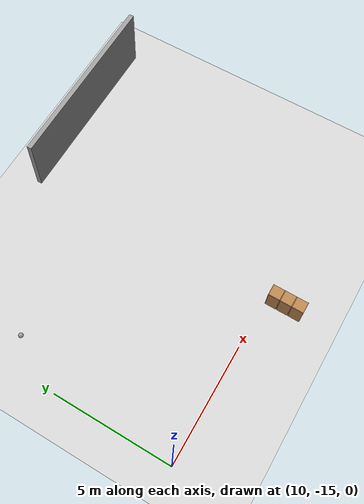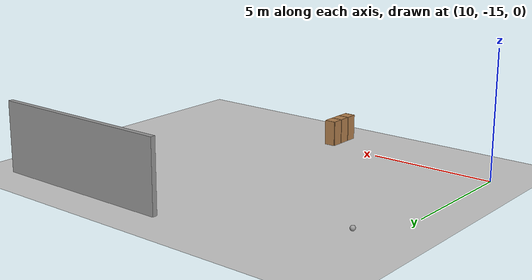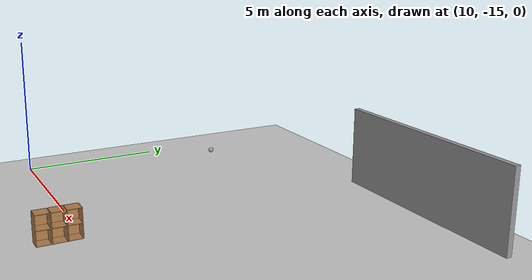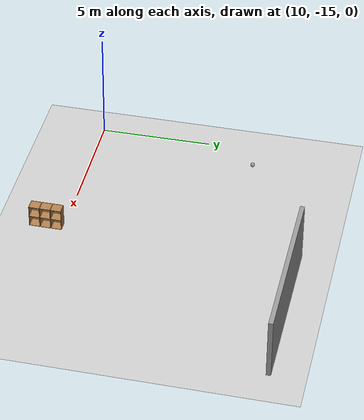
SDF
<sdf version="1.6">
 <world name="default">
  <model name="ground_plane">
   <static>1</static>
   <link name="link">
    <collision name="collision">
     <geometry><plane><normal>0 0 1</normal><size>100 100</size></plane></geometry>
     <surface>
      <contact><collide_bitmask>65535</collide_bitmask></contact>
      <friction><ode><mu>100</mu><mu2>50</mu2></ode></friction>
     </surface>
    </collision>
    <visual name="visual">
     <cast_shadows>0</cast_shadows>
     <geometry><plane><normal>0 0 1</normal><size>100 100</size></plane></geometry>
     <material>
      <script><uri>file://media/materials/scripts/gazebo.material</uri><name>Gazebo/Grey</name></script>
     </material>
    </visual>
   </link>
  </model>
  <model name="grey_wall">
   <static>1</static>
   <link name="link">
    <pose>0 0 1.4 0 -0 0</pose>
    <collision name="collision"><geometry><box><size>7.5 0.2 2.8</size></box></geometry></collision>
    <visual name="visual">
     <cast_shadows>0</cast_shadows>
     <geometry><box><size>7.5 0.2 2.8</size></box></geometry>
     <material>
      <script>
       <uri>model://grey_wall/materials/scripts</uri>
       <uri>model://grey_wall/materials/textures</uri>
       <name>vrc/grey_wall</name>
      </script>
     </material>
    </visual>
   </link>
   <pose>20.7355 -4.54706 0 0 -0 0</pose>
  </model>
  <model name="cabinet">
   <static>1</static>
   <link name="cabinet_bottom_plate">
    <inertial>
     <pose>0 0 -1 0 -0 0</pose>
     <inertia><ixx>2.05</ixx><ixy>0</ixy><ixz>0</ixz><iyy>2.05</iyy><iyz>0</iyz><izz>2.05</izz></inertia>
     <mass>25</mass>
    </inertial>
    <collision name="cabinet_bottom_plate_geom">
     <pose>0 0 0.01 0 -0 0</pose>
     <geometry><box><size>0.45 0.45 0.02</size></box></geometry>
    </collision>
    <visual name="cabinet_bottom_plate_geom_visual">
     <pose>0 0 0.01 0 -0 0</pose>
     <geometry><box><size>0.45 0.45 0.02</size></box></geometry>
     <material>
      <script><uri>file://media/materials/scripts/gazebo.material</uri><name>Gazebo/Wood</name></script>
     </material>
    </visual>
    <collision name="cabinet_bottom_plate_geom_cabinet_back_plate">
     <pose>0.235 0 0.51 0 -0 0</pose>
     <geometry><box><size>0.02 0.45 1.02</size></box></geometry>
    </collision>
    <visual name="cabinet_bottom_plate_geom_cabinet_back_plate_visual">
     <pose>0.235 0 0.51 0 -0 0</pose>
     <geometry><box><size>0.02 0.45 1.02</size></box></geometry>
     <material>
      <script><uri>file://media/materials/scripts/gazebo.material</uri><name>Gazebo/Wood</name></script>
     </material>
    </visual>
    <collision name="cabinet_bottom_plate_geom_cabinet_left_plate">
     <pose>0 0.235 0.51 0 -0 0</pose>
     <geometry><box><size>0.45 0.02 1.02</size></box></geometry>
    </collision>
    <visual name="cabinet_bottom_plate_geom_cabinet_left_plate_visual">
     <pose>0 0.235 0.51 0 -0 0</pose>
     <geometry><box><size>0.45 0.02 1.02</size></box></geometry>
     <material>
      <script><uri>file://media/materials/scripts/gazebo.material</uri><name>Gazebo/Wood</name></script>
     </material>
    </visual>
    <collision name="cabinet_bottom_plate_geom_cabinet_middle_plate">
     <pose>0 0 0.51 0 -0 0</pose>
     <geometry><box><size>0.45 0.45 0.02</size></box></geometry>
    </collision>
    <visual name="cabinet_bottom_plate_geom_cabinet_middle_plate_visual">
     <pose>0 0 0.51 0 -0 0</pose>
     <geometry><box><size>0.45 0.45 0.02</size></box></geometry>
     <material>
      <script><uri>file://media/materials/scripts/gazebo.material</uri><name>Gazebo/Wood</name></script>
     </material>
    </visual>
    <collision name="cabinet_bottom_plate_geom_cabinet_right_plate">
     <pose>0 -0.235 0.51 0 -0 0</pose>
     <geometry><box><size>0.45 0.02 1.02</size></box></geometry>
    </collision>
    <visual name="cabinet_bottom_plate_geom_cabinet_right_plate_visual">
     <pose>0 -0.235 0.51 0 -0 0</pose>
     <geometry><box><size>0.45 0.02 1.02</size></box></geometry>
     <material>
      <script><uri>file://media/materials/scripts/gazebo.material</uri><name>Gazebo/Wood</name></script>
     </material>
    </visual>
    <collision name="cabinet_bottom_plate_geom_cabinet_top_plate">
     <pose>0 0 1.01 0 -0 0</pose>
     <geometry><box><size>0.45 0.45 0.02</size></box></geometry>
    </collision>
    <visual name="cabinet_bottom_plate_geom_cabinet_top_plate_visual">
     <pose>0 0 1.01 0 -0 0</pose>
     <geometry><box><size>0.45 0.45 0.02</size></box></geometry>
     <material>
      <script><uri>file://media/materials/scripts/gazebo.material</uri><name>Gazebo/Wood</name></script>
     </material>
    </visual>
   </link>
   <pose>17.282 -16.2661 0 0 -0 3.13752</pose>
  </model>
  <model name="cabinet_clone">
   <static>1</static>
   <link name="cabinet_bottom_plate">
    <inertial>
     <pose>0 0 -1 0 -0 0</pose>
     <inertia><ixx>2.05</ixx><ixy>0</ixy><ixz>0</ixz><iyy>2.05</iyy><iyz>0</iyz><izz>2.05</izz></inertia>
     <mass>25</mass>
    </inertial>
    <collision name="cabinet_bottom_plate_geom">
     <pose>0 0 0.01 0 -0 0</pose>
     <geometry><box><size>0.45 0.45 0.02</size></box></geometry>
    </collision>
    <visual name="cabinet_bottom_plate_geom_visual">
     <pose>0 0 0.01 0 -0 0</pose>
     <geometry><box><size>0.45 0.45 0.02</size></box></geometry>
     <material>
      <script><uri>file://media/materials/scripts/gazebo.material</uri><name>Gazebo/Wood</name></script>
     </material>
    </visual>
    <collision name="cabinet_bottom_plate_geom_cabinet_back_plate">
     <pose>0.235 0 0.51 0 -0 0</pose>
     <geometry><box><size>0.02 0.45 1.02</size></box></geometry>
    </collision>
    <visual name="cabinet_bottom_plate_geom_cabinet_back_plate_visual">
     <pose>0.235 0 0.51 0 -0 0</pose>
     <geometry><box><size>0.02 0.45 1.02</size></box></geometry>
     <material>
      <script><uri>file://media/materials/scripts/gazebo.material</uri><name>Gazebo/Wood</name></script>
     </material>
    </visual>
    <collision name="cabinet_bottom_plate_geom_cabinet_left_plate">
     <pose>0 0.235 0.51 0 -0 0</pose>
     <geometry><box><size>0.45 0.02 1.02</size></box></geometry>
    </collision>
    <visual name="cabinet_bottom_plate_geom_cabinet_left_plate_visual">
     <pose>0 0.235 0.51 0 -0 0</pose>
     <geometry><box><size>0.45 0.02 1.02</size></box></geometry>
     <material>
      <script><uri>file://media/materials/scripts/gazebo.material</uri><name>Gazebo/Wood</name></script>
     </material>
    </visual>
    <collision name="cabinet_bottom_plate_geom_cabinet_middle_plate">
     <pose>0 0 0.51 0 -0 0</pose>
     <geometry><box><size>0.45 0.45 0.02</size></box></geometry>
    </collision>
    <visual name="cabinet_bottom_plate_geom_cabinet_middle_plate_visual">
     <pose>0 0 0.51 0 -0 0</pose>
     <geometry><box><size>0.45 0.45 0.02</size></box></geometry>
     <material>
      <script><uri>file://media/materials/scripts/gazebo.material</uri><name>Gazebo/Wood</name></script>
     </material>
    </visual>
    <collision name="cabinet_bottom_plate_geom_cabinet_right_plate">
     <pose>0 -0.235 0.51 0 -0 0</pose>
     <geometry><box><size>0.45 0.02 1.02</size></box></geometry>
    </collision>
    <visual name="cabinet_bottom_plate_geom_cabinet_right_plate_visual">
     <pose>0 -0.235 0.51 0 -0 0</pose>
     <geometry><box><size>0.45 0.02 1.02</size></box></geometry>
     <material>
      <script><uri>file://media/materials/scripts/gazebo.material</uri><name>Gazebo/Wood</name></script>
     </material>
    </visual>
    <collision name="cabinet_bottom_plate_geom_cabinet_top_plate">
     <pose>0 0 1.01 0 -0 0</pose>
     <geometry><box><size>0.45 0.45 0.02</size></box></geometry>
    </collision>
    <visual name="cabinet_bottom_plate_geom_cabinet_top_plate_visual">
     <pose>0 0 1.01 0 -0 0</pose>
     <geometry><box><size>0.45 0.45 0.02</size></box></geometry>
     <material>
      <script><uri>file://media/materials/scripts/gazebo.material</uri><name>Gazebo/Wood</name></script>
     </material>
    </visual>
   </link>
   <pose>17.282 -15.7753 0 0 -0 3.13752</pose>
  </model>
  <model name="cabinet_clone_0">
   <static>1</static>
   <link name="cabinet_bottom_plate">
    <inertial>
     <pose>0 0 -1 0 -0 0</pose>
     <inertia><ixx>2.05</ixx><ixy>0</ixy><ixz>0</ixz><iyy>2.05</iyy><iyz>0</iyz><izz>2.05</izz></inertia>
     <mass>25</mass>
    </inertial>
    <collision name="cabinet_bottom_plate_geom">
     <pose>0 0 0.01 0 -0 0</pose>
     <geometry><box><size>0.45 0.45 0.02</size></box></geometry>
    </collision>
    <visual name="cabinet_bottom_plate_geom_visual">
     <pose>0 0 0.01 0 -0 0</pose>
     <geometry><box><size>0.45 0.45 0.02</size></box></geometry>
     <material>
      <script><uri>file://media/materials/scripts/gazebo.material</uri><name>Gazebo/Wood</name></script>
     </material>
    </visual>
    <collision name="cabinet_bottom_plate_geom_cabinet_back_plate">
     <pose>0.235 0 0.51 0 -0 0</pose>
     <geometry><box><size>0.02 0.45 1.02</size></box></geometry>
    </collision>
    <visual name="cabinet_bottom_plate_geom_cabinet_back_plate_visual">
     <pose>0.235 0 0.51 0 -0 0</pose>
     <geometry><box><size>0.02 0.45 1.02</size></box></geometry>
     <material>
      <script><uri>file://media/materials/scripts/gazebo.material</uri><name>Gazebo/Wood</name></script>
     </material>
    </visual>
    <collision name="cabinet_bottom_plate_geom_cabinet_left_plate">
     <pose>0 0.235 0.51 0 -0 0</pose>
     <geometry><box><size>0.45 0.02 1.02</size></box></geometry>
    </collision>
    <visual name="cabinet_bottom_plate_geom_cabinet_left_plate_visual">
     <pose>0 0.235 0.51 0 -0 0</pose>
     <geometry><box><size>0.45 0.02 1.02</size></box></geometry>
     <material>
      <script><uri>file://media/materials/scripts/gazebo.material</uri><name>Gazebo/Wood</name></script>
     </material>
    </visual>
    <collision name="cabinet_bottom_plate_geom_cabinet_middle_plate">
     <pose>0 0 0.51 0 -0 0</pose>
     <geometry><box><size>0.45 0.45 0.02</size></box></geometry>
    </collision>
    <visual name="cabinet_bottom_plate_geom_cabinet_middle_plate_visual">
     <pose>0 0 0.51 0 -0 0</pose>
     <geometry><box><size>0.45 0.45 0.02</size></box></geometry>
     <material>
      <script><uri>file://media/materials/scripts/gazebo.material</uri><name>Gazebo/Wood</name></script>
     </material>
    </visual>
    <collision name="cabinet_bottom_plate_geom_cabinet_right_plate">
     <pose>0 -0.235 0.51 0 -0 0</pose>
     <geometry><box><size>0.45 0.02 1.02</size></box></geometry>
    </collision>
    <visual name="cabinet_bottom_plate_geom_cabinet_right_plate_visual">
     <pose>0 -0.235 0.51 0 -0 0</pose>
     <geometry><box><size>0.45 0.02 1.02</size></box></geometry>
     <material>
      <script><uri>file://media/materials/scripts/gazebo.material</uri><name>Gazebo/Wood</name></script>
     </material>
    </visual>
    <collision name="cabinet_bottom_plate_geom_cabinet_top_plate">
     <pose>0 0 1.01 0 -0 0</pose>
     <geometry><box><size>0.45 0.45 0.02</size></box></geometry>
    </collision>
    <visual name="cabinet_bottom_plate_geom_cabinet_top_plate_visual">
     <pose>0 0 1.01 0 -0 0</pose>
     <geometry><box><size>0.45 0.45 0.02</size></box></geometry>
     <material>
      <script><uri>file://media/materials/scripts/gazebo.material</uri><name>Gazebo/Wood</name></script>
     </material>
    </visual>
   </link>
   <pose>17.282 -15.2887 0 0 -0 3.13752</pose>
  </model>
  <model name="my_ball">
   <link name="link">
    <inertial>
     <mass>1</mass>
     <inertia><ixx>0.1</ixx><ixy>0</ixy><ixz>0</ixz><iyy>0.1</iyy><iyz>0</iyz><izz>0.1</izz></inertia>
    </inertial>
    <visual name="visual">
     <geometry><sphere><radius>0.1</radius></sphere></geometry>
     <material>
      <script><name>Gazebo/Grey</name><uri>file://media/materials/scripts/gazebo.material</uri></script>
      <shader type="vertex"><normal_map>__default__</normal_map></shader>
      <ambient>0.3 0.3 0.3 1</ambient>
      <diffuse>0.7 0.7 0.7 1</diffuse>
      <specular>0.01 0.01 0.01 1</specular>
      <emissive>1 1 1 1</emissive>
     </material>
    </visual>
    <collision name="collision">
     <geometry><sphere><radius>0.1</radius></sphere></geometry>
     <surface>
      <friction>
       <ode><mu>1</mu><mu2>1</mu2><fdir1>0 0 0</fdir1><slip1>0</slip1><slip2>0</slip2></ode>
       <torsional>
        <coefficient>1</coefficient>
        <patch_radius>0</patch_radius>
        <surface_radius>0</surface_radius>
        <use_patch_radius>1</use_patch_radius>
        <ode><slip>0</slip></ode>
       </torsional>
      </friction>
      <bounce><restitution_coefficient>0</restitution_coefficient><threshold>1e+06</threshold></bounce>
      <contact>
       <collide_without_contact>0</collide_without_contact>
       <collide_without_contact_bitmask>1</collide_without_contact_bitmask>
       <collide_bitmask>1</collide_bitmask>
       <ode>
        <soft_cfm>0</soft_cfm>
        <soft_erp>0.2</soft_erp>
        <kp>1e+13</kp>
        <kd>1</kd>
        <max_vel>0.01</max_vel>
        <min_depth>0</min_depth>
       </ode>
       <bullet>
        <split_impulse>1</split_impulse>
        <split_impulse_penetration_threshold>-0.01</split_impulse_penetration_threshold>
        <soft_cfm>0</soft_cfm>
        <soft_erp>0.2</soft_erp>
        <kp>1e+13</kp>
        <kd>1</kd>
       </bullet>
      </contact>
     </surface>
    </collision>
   </link>
   <static>0</static>
   <pose>11.1878 -7.70629 0.1 0 -0 0</pose>
  </model>
 </world>
</sdf>
